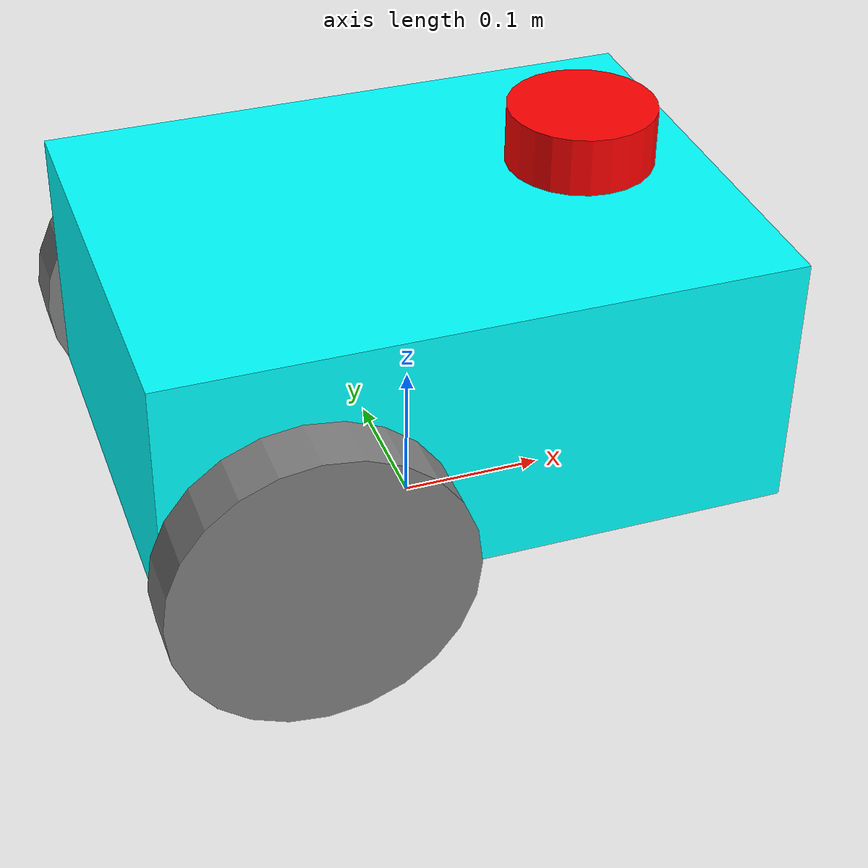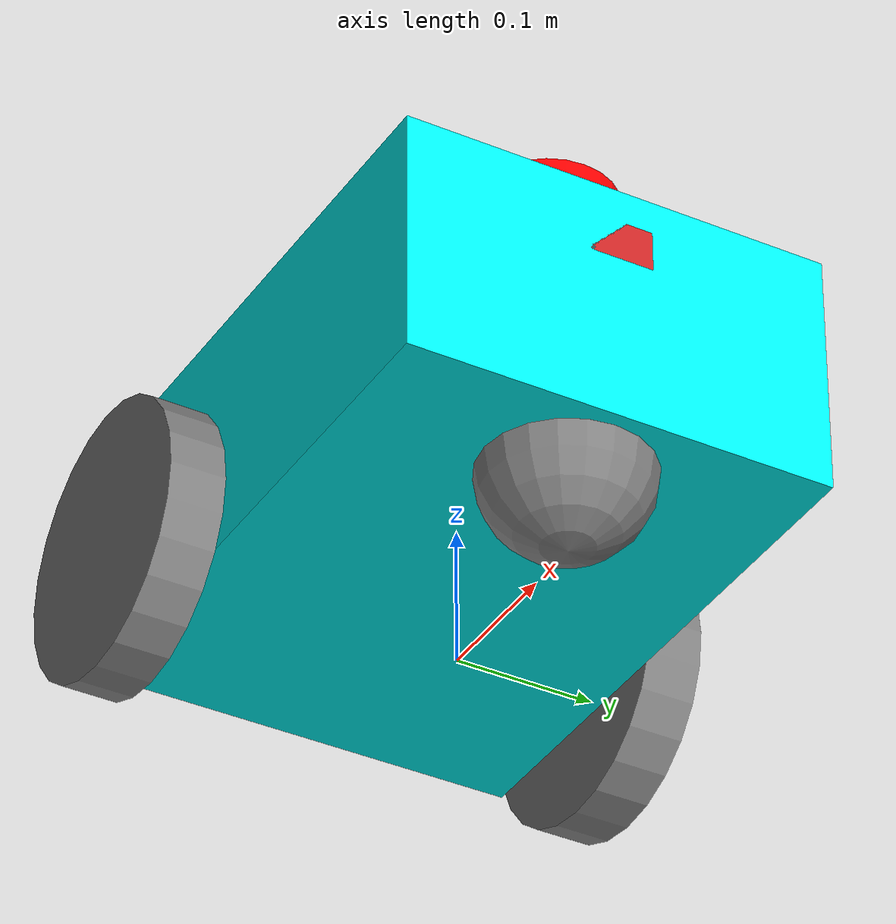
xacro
<?xml version="1.0"?>
<robot name="dif_bot" xmlns:xacro="http://ros.org/wiki/xacro">

  <xacro:property name="base_width" value="0.31"/>
  <xacro:property name="base_length" value="0.42"/>
  <xacro:property name="base_height" value="0.18"/>
  <xacro:property name="wheel_radius" value="0.10"/>
  <xacro:property name="wheel_width" value="0.04"/>
  <xacro:property name="wheel_ygap" value="0.025"/>
  <xacro:property name="wheel_zoff" value="0.05"/>
  <xacro:property name="wheel_xoff" value="0.12"/>
  <xacro:property name="caster_xoff" value="0.14"/>

  <xacro:macro name="box_inertia" params="m w h d">
    <inertial>
      <origin xyz="0 0 0" rpy="${pi/2} 0 ${pi/2}"/>
      <mass value="${m}"/>
      <inertia ixx="${(m/12) * (h*h + d*d)}" ixy="0.0" ixz="0.0"
               iyy="${(m/12) * (w*w + d*d)}" iyz="0.0"
               izz="${(m/12) * (w*w + h*h)}"/>
    </inertial>
  </xacro:macro>

  <xacro:macro name="cylinder_inertia" params="m r h">
    <inertial>
      <origin xyz="0 0 0" rpy="${pi/2} 0 0" />
      <mass value="${m}"/>
      <inertia ixx="${(m/12) * (3*r*r + h*h)}" ixy="0" ixz="0"
               iyy="${(m/12) * (3*r*r + h*h)}" iyz="0"
               izz="${(m/2) * (r*r)}"/>
    </inertial>
  </xacro:macro>

  <xacro:macro name="sphere_inertia" params="m r">
    <inertial>
      <mass value="${m}"/>
      <inertia ixx="${(2/5) * m * (r*r)}" ixy="0.0" ixz="0.0"
               iyy="${(2/5) * m * (r*r)}" iyz="0.0"
               izz="${(2/5) * m * (r*r)}"/>
    </inertial>
  </xacro:macro>

  <link name="base_footprint"/>

  <joint name="base_joint" type="fixed">
    <parent link="base_footprint"/>
    <child link="base_link"/>
    <origin xyz="0 0 ${wheel_radius + wheel_zoff}" rpy="0 0 0"/>
  </joint>

  <link name="base_link">
    <visual>
      <geometry>
        <box size="${base_length} ${base_width} ${base_height}"/>
      </geometry>
      <material name="Cyan">
        <color rgba="0 1.0 1.0 1.0"/>
      </material>
    </visual>
    <collision>
      <geometry>
        <box size="${base_length} ${base_width} ${base_height}"/>
      </geometry>
    </collision>
    <xacro:box_inertia m="15" w="${base_width}" d="${base_length}" h="${base_height}"/>
  </link>

  <xacro:macro name="wheel" params="prefix x_reflect y_reflect">
    <link name="${prefix}_link">
      <visual>
        <origin xyz="0 0 0" rpy="${pi/2} 0 0"/>
        <geometry>
          <cylinder radius="${wheel_radius}" length="${wheel_width}"/>
        </geometry>
        <material name="Gray">
          <color rgba="0.5 0.5 0.5 1.0"/>
        </material>
      </visual>
      <collision>
        <origin xyz="0 0 0" rpy="${pi/2} 0 0"/>
        <geometry>
          <cylinder radius="${wheel_radius}" length="${wheel_width}"/>
        </geometry>
      </collision>
      <xacro:cylinder_inertia m="0.5" r="${wheel_radius}" h="${wheel_width}"/>
    </link>

    <joint name="${prefix}_joint" type="continuous">
      <parent link="base_link"/>
      <child link="${prefix}_link"/>
      <origin xyz="${x_reflect*wheel_xoff} ${y_reflect*(base_width/2+wheel_ygap)} ${-wheel_zoff}" rpy="0 0 0"/>
      <axis xyz="0 1 0"/>
    </joint>
  </xacro:macro>

  <xacro:wheel prefix="drivewhl_l" x_reflect="-1" y_reflect="1" />
  <xacro:wheel prefix="drivewhl_r" x_reflect="-1" y_reflect="-1" />

  <link name="caster_wheel">
    <visual>
      <geometry>
        <sphere radius="${(wheel_radius+wheel_zoff-(base_height/2))}"/>
      </geometry>
      <material name="Gray"/>
    </visual>
    <collision>
      <origin xyz="0 0 0" rpy="0 0 0"/>
      <geometry>
        <sphere radius="${(wheel_radius+wheel_zoff-(base_height/2))}"/>
      </geometry>
    </collision>
    <xacro:sphere_inertia m="0.5" r="${(wheel_radius+wheel_zoff-(base_height/2))}"/>
  </link>

  <joint name="caster_joint" type="fixed">
    <parent link="base_link"/>
    <child link="caster_wheel"/>
    <origin xyz="${caster_xoff} 0.0 ${-(base_height/2)}" rpy="0 0 0"/>
  </joint>
 <xacro:include filename="sensors.xacro" />
 <gazebo reference="base_link">
    <material>Gazebo/Turquoise</material>
  </gazebo>

  <gazebo reference="drivewhl_l_link">
    <material>Gazebo/Gray</material>
  </gazebo>

  <gazebo reference="drivewhl_r_link">
    <material>Gazebo/Gray</material>
  </gazebo>

  <gazebo reference="caster_wheel">
    <material>Gazebo/Turquoise</material>
    <mu1 value="0.001"/>
    <mu2 value="0.001"/>
  </gazebo>
</robot>

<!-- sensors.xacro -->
<robot xmlns:xacro="http://ros.org/wiki/xacro">

  <link name="imu_link">
    <visual>
      <geometry>
        <box size="0.05 0.05 0.05"/>
      </geometry>
    </visual>
    <collision>
      <geometry>
        <box size="0.05 0.05 0.05"/>
      </geometry>
    </collision>
    <xacro:box_inertia m="0.1" w="0.05" h="0.05" d="0.05"/>
  </link>

  <joint name="imu_joint" type="fixed">
    <parent link="base_link"/>
    <child link="imu_link"/>
    <origin xyz="0 0 0.01"/>
  </joint>

  <gazebo reference="imu_link">
    <material>Gazebo/Red</material>
    <sensor name="imu_sensor" type="imu">
      <plugin filename="libgazebo_ros_imu_sensor.so" name="imu_plugin">
        <ros>
          <namespace>/</namespace>
          <remapping>~/out:=imu</remapping>
        </ros>
        <initial_orientation_as_reference>false</initial_orientation_as_reference>
      </plugin>
      <always_on>true</always_on>
      <update_rate>100</update_rate>
      <visualize>true</visualize>
    </sensor>
  </gazebo>

  <link name="lidar_link">
    <visual>
      <geometry>
        <cylinder radius="0.05" length="0.04"/>
      </geometry>
      <material name="Red">
        <color rgba="1.0 0 0 1.0"/>
      </material>
    </visual>
    <collision>
      <geometry>
        <cylinder radius="0.05" length="0.04"/>
      </geometry>
    </collision>
    <xacro:cylinder_inertia m="0.1" r="0.05" h="0.04"/>
  </link>

  <joint name="lidar_joint" type="fixed">
    <parent link="base_link"/>
    <child link="lidar_link"/>
    <origin xyz="0.12 0 0.12" rpy="0 0 0"/>
  </joint>

  <gazebo reference="lidar_link">
    <material>Gazebo/Red</material>
    <sensor name="lidar" type="ray">
      <pose>0 0 0 0 0 0</pose>
      <always_on>true</always_on>
      <visualize>true</visualize>
      <update_rate>5</update_rate>
      <ray>
        <scan>
          <horizontal>
            <samples>360</samples>
            <resolution>1</resolution>
            <min_angle>0.000000</min_angle>
            <max_angle>6.280000</max_angle>
          </horizontal>
        </scan>
        <range>
          <min>0.120000</min>
          <max>3.5</max>
          <resolution>0.015000</resolution>
        </range>
        <noise>
          <type>gaussian</type>
          <mean>0.0</mean>
          <stddev>0.01</stddev>
        </noise>
      </ray>
      <plugin name="lidar_controller" filename="libgazebo_ros_ray_sensor.so">
        <ros>
          <remapping>~/out:=scan</remapping>
        </ros>
        <output_type>sensor_msgs/LaserScan</output_type>
        <frame_name>lidar_link</frame_name>
      </plugin>
    </sensor>
  </gazebo>

  <link name="camera_link">
    <visual>
      <geometry>
        <box size="0.02 0.05 0.03"/>
      </geometry>
    </visual>
    <collision>
      <geometry>
        <box size="0.02 0.05 0.03"/>
      </geometry>
    </collision>
    <xacro:box_inertia m="0.05" w="0.05" h="0.03" d="0.02"/>
  </link>

  <joint name="camera_joint" type="fixed">
    <parent link="base_link"/>
    <child link="camera_link"/>
    <origin xyz="0.2 0 0.05" rpy="0 0 0"/>
  </joint>

  <gazebo reference="camera_link">
    <material>Gazebo/Red</material>
    <sensor name="camera" type="camera">
      <always_on>true</always_on>
      <update_rate>30.0</update_rate>
      <camera name="head">
        <horizontal_fov>1.047198</horizontal_fov>
        <image>
          <width>640</width>
          <height>480</height>
          <format>R8G8B8</format>
        </image>
        <clip>
          <near>0.05</near>
          <far>3</far>
        </clip>
      </camera>
      <plugin name="camera_controller" filename="libgazebo_ros_camera.so">
        <alwaysOn>true</alwaysOn>
        <updateRate>0.0</updateRate>
        <cameraName>dif_bot/camera</cameraName>
        <imageTopicName>image_raw</imageTopicName>
        <cameraInfoTopicName>camera_info</cameraInfoTopicName>
        <frameName>camera_link</frameName>
      </plugin>
    </sensor>
  </gazebo>

</robot>
